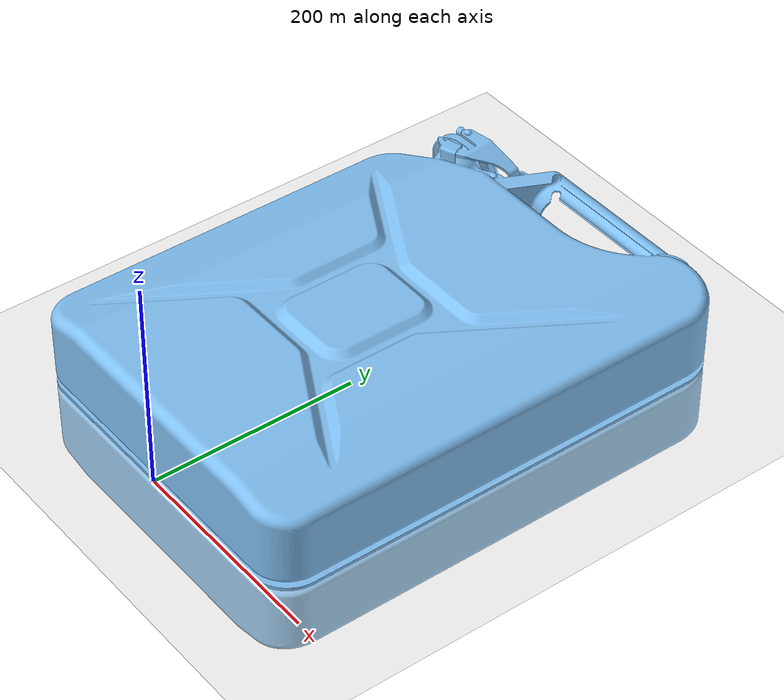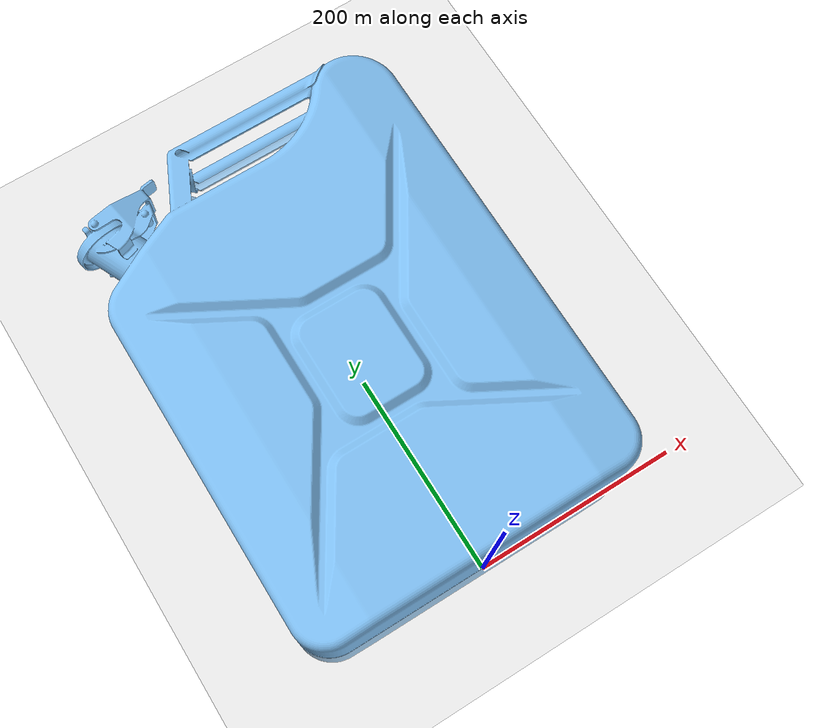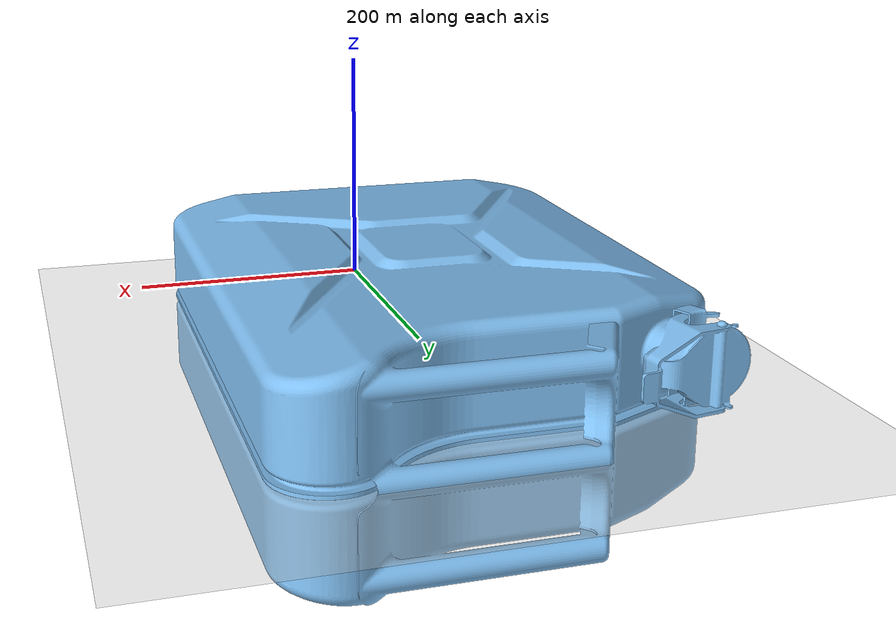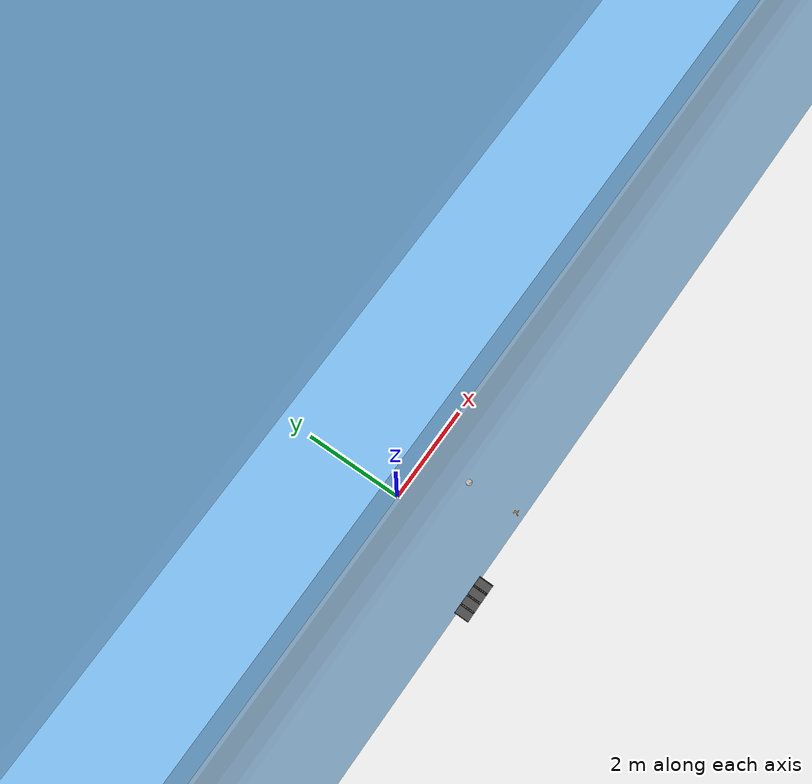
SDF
<sdf version="1.4">
 <world name="default">
  <scene><shadows>0</shadows></scene>
  <scene><shadows>false</shadows></scene>
  <include><uri>model://ground_plane</uri></include>
  <include><uri>model://sun</uri></include>
  <include>
   <static>true</static>
   <uri>model://leaf_cell</uri>
   <name>leaf_cell</name>
   <pose>0.82 2.0 0.82 0 0 0</pose>
  </include>
  <include>
   <static>true</static>
   <uri>model://fuel_can</uri>
   <name>fuel_can</name>
   <pose>0.89 0.0 0.82 0 0 0</pose>
  </include>
  <include>
   <static>true</static>
   <uri>model://fuel_tank_tap</uri>
   <name>fuel_tank_tap</name>
   <pose>0.82 -1.0 0.82 0 0 0</pose>
  </include>
  <include>
   <static>true</static>
   <uri>model://water_tap</uri>
   <name>water_tap</name>
   <pose>0.86 -2.0 0.82 0 0 0</pose>
  </include>
  <include>
   <static>True</static>
   <uri>model://industrial_bin</uri>
   <name>bin1</name>
   <pose>-0.51 -2.25 0.545 0 0 1.5707</pose>
  </include>
  <include>
   <static>True</static>
   <uri>model://industrial_bin</uri>
   <name>bin2</name>
   <pose>-0.71 -2.25 0.545 0 0 1.5707</pose>
  </include>
  <include>
   <static>True</static>
   <uri>model://industrial_bin</uri>
   <name>bin3</name>
   <pose>-0.91 -2.25 0.545 0 0 1.5707</pose>
  </include>
  <include>
   <static>True</static>
   <uri>model://industrial_bin</uri>
   <name>bin4</name>
   <pose>-1.11 -2.25 0.545 0 0 1.5707</pose>
  </include>
 </world>
</sdf>

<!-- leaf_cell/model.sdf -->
<sdf version="1.5">
  <model name="leaf_cell">
    <static>false</static>
    <link name="leaf_cell_link">
      <collision name="collision">
        <geometry>
          <box>
            <size> 0.2228 0.3149 0.035</size>
          </box>
        </geometry>
        <surface>
          <friction>
            <ode>
              <mu>0.99</mu>
              <mu2>0.99</mu2>
            </ode>
          </friction>
        </surface>
      </collision>

      <visual name="visual">
        <geometry>
          <mesh>
            <uri>model://leaf_cell/meshes/leaf_cell.dae</uri>
          </mesh>
        </geometry>
        <material>
          <script>
            <uri>file://media/materials/scripts/gazebo.material</uri>
            <name>Gazebo/Grey</name>
          </script>
        </material>
      </visual>

      <inertial>
        <pose>0.0 0.0 0.0 0.0 0.0 -1.5707</pose>
        <mass>0.1</mass>
        <inertia>
          <ixx>0.000539835</ixx>
          <iyy>0.00075853</iyy>
          <izz>0.0012813</izz>
          <ixy>0.0</ixy>
          <ixz>0.0</ixz>
          <iyz>0.0</iyz>
        </inertia>
      </inertial>

    </link>

  </model>
</sdf>

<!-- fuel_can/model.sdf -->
<sdf version="1.5">
  <model name="fuel can">
    <static>false</static>
    <link name="bowl_link">
      <collision name="collision">
        <geometry>
      	  <box>
            <size> 0.12075 0.16404 0.0577</size>
          </box>
        </geometry>
		<surface>
			<friction>
				<ode>
					<mu>0.98</mu>
					<mu2>0.98</mu2>
				</ode>
			</friction>
		</surface>
      </collision>
      <visual name="visual">
        <geometry>
          <mesh>
            <uri>model://fuel_can/meshes/fuel_can.dae</uri>
          </mesh>
        </geometry>
        <material>
		    <script>
		        <uri>file://media/materials/scripts/gazebo.material</uri>
		        <name>Gazebo/SkyBlue</name>
		    </script>
        </material>
      </visual>
	  <inertial>
		<pose>0.0 0.0 0.0 0.0 0.0 0.0</pose>
        <mass>0.1</mass>
		<inertia>
			<ixx>0.000251986763333</ixx>
			<iyy>0.000149248770833</iyy>
			<izz>0.0003457473675</izz>
			<ixy>0.0</ixy>
			<ixz>0.0</ixz>
			<iyz>0.0</iyz>
		</inertia>
	  </inertial>
	</link>

  </model>
</sdf>

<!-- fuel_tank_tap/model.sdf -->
<sdf version="1.5">
  <model name="fuel_tank_tap">
    <static>false</static>
    <link name="bowl_link">
      <collision name="collision">
        <geometry>
		  <cylinder>
			  <radius>0.05897</radius>
			  <length>0.012</length>
		  </cylinder>
        </geometry>
		<surface>
			<friction>
				<ode>
					<mu>0.98</mu>
					<mu2>0.98</mu2>
				</ode>
			</friction>
		</surface>
      </collision>
      <visual name="visual">
        <geometry>
          <mesh>
            <uri>model://fuel_tank_tap/meshes/fuel_tank_tap.dae</uri>
          </mesh>
        </geometry>
        <material>
		    <script>
		        <uri>file://media/materials/scripts/gazebo.material</uri>
		        <name>Gazebo/CoM</name>
		    </script>
        </material>
      </visual>
	  <inertial>
		<pose>0.0 0.0 0.0 0.0 0.0 0.0</pose>
        <mass>0.2</mass>
		<inertia>
			<ixx>0.00017630253125</ixx>
			<iyy>0.00017630253125</iyy>
			<izz>0.0003478050625</izz>
			<ixy>0.0</ixy>
			<ixz>0.0</ixz>
			<iyz>0.0</iyz>
		</inertia>
	  </inertial>
	</link>

  </model>
</sdf>

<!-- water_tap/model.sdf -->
<sdf version="1.5">
  <model name="water tap">
    <static>false</static>
    <link name="bowl_link">
      <collision name="collision">
        <geometry>
      	  <box>
            <size> 0.09466 0.10685 0.028</size>
          </box>
        </geometry>
		<surface>
			<friction>
				<ode>
					<mu>0.98</mu>
					<mu2>0.98</mu2>
				</ode>
			</friction>
		</surface>
      </collision>
      <visual name="visual">
        <geometry>
          <mesh>
            <uri>model://water_tap/meshes/water_tap.dae</uri>
          </mesh>
        </geometry>
        <material>
		    <script>
		        <uri>file://media/materials/scripts/gazebo.material</uri>
		        <name>Gazebo/Orange</name>
		    </script>
        </material>
      </visual>
	  <inertial>
		<pose>0.0 0.0 0.0 0.0 0.0 0.0</pose>
        <mass>0.2</mass>
		<inertia>
			<ixx>0.000203348708333</ixx>
			<iyy>0.000162408593333</iyy>
			<izz>0.000339623968333</izz>
			<ixy>0.0</ixy>
			<ixz>0.0</ixz>
			<iyz>0.0</iyz>
		</inertia>
	  </inertial>
	</link>

  </model>
</sdf>

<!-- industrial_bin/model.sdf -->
<sdf version="1.5">
  <model name="industrial_bin">
    <static>false</static>
    <link name="leaf_cell_link">
      <collision name="collision">
        <geometry>
      		 <mesh>
            	<uri>model://industrial_bin/meshes/industrial_bin.stl</uri>
          	</mesh>
        </geometry>
		<surface>
			<friction>
				<ode>
					<mu>0.98</mu>
					<mu2>0.98</mu2>
				</ode>
			</friction>
		</surface>
      </collision>
      <visual name="visual">
        <geometry>
          <mesh>
            <uri>model://industrial_bin/meshes/industrial_bin.dae</uri>
          </mesh>
        </geometry>
        <material>
		    <script>
		        <uri>file://media/materials/scripts/gazebo.material</uri>
		        <name>Gazebo/DarkGrey</name>
		    </script>
        </material>
      </visual>
	  <inertial>
			<pose>0.0 0.0 0.0 0.0 0.0 0.0</pose>
		    <mass>1.0</mass>
		    <inertia>
     		  <ixx>0.0039</ixx>
		      <iyy>0.0082</iyy>
		      <izz>0.0097083</izz>
		      <ixy>0.0</ixy>
		      <ixz>0.0</ixz>
		      <iyz>0.0</iyz>
		    </inertia>
	  </inertial>
	</link>
  </model>
</sdf>
